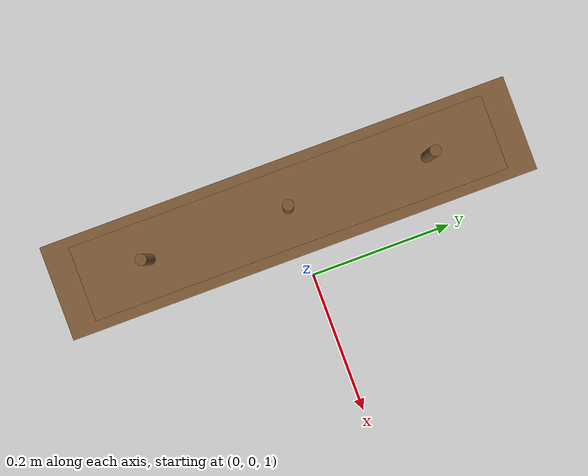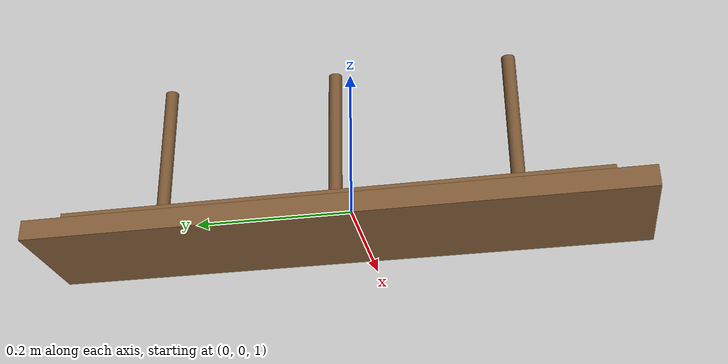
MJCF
<mujoco model="hanoi_base">
  <asset>
    <texture file="./table_arena/textures/light-wood.png"
             type="2d"
             name="hanoi_wood_tex" />

    <material name="hanoi_base_lower_mat"
              texture="hanoi_wood_tex"
              texrepeat="1 1"
              texuniform="true"
              rgba="0.72 0.72 0.72 1"
              specular="0.0"
              shininess="0.0"
              reflectance="0.0" />

    <material name="hanoi_base_upper_mat"
              texture="hanoi_wood_tex"
              texrepeat="1 1"
              texuniform="true"
              rgba="0.72 0.72 0.72 1"
              specular="0.0"
              shininess="0.0"
              reflectance="0.0" />

    <material name="hanoi_post_mat"
              texture="hanoi_wood_tex"
              texrepeat="1 3"
              texuniform="true"
              rgba="0.68 0.68 0.68 1"
              specular="0.0"
              shininess="0.0"
              reflectance="0.0" />
  </asset>

  <worldbody>
    <body name="hanoi_base" pos="-0.10 0 0.92">

      <!-- ================= Base ================= -->

      <geom name="hanoi_base_lower_visual"
            type="box"
            pos="0 0 0.012"
            size="0.07 0.35 0.012"
            material="hanoi_base_lower_mat"
            contype="0" conaffinity="0"
            density="0"
            group="1"/>

      <geom name="hanoi_base_lower_collision"
            type="box"
            pos="0 0 0.012"
            size="0.07 0.35 0.012"
            friction="1.0 0.02 0.002"
            density="900"
            group="3"/>

      <geom name="hanoi_base_upper_visual"
            type="box"
            pos="0 0 0.030"
            size="0.055 0.31 0.006"
            material="hanoi_base_upper_mat"
            contype="0" conaffinity="0"
            density="0"
            group="1"/>

      <geom name="hanoi_base_upper_collision"
            type="box"
            pos="0 0 0.030"
            size="0.055 0.31 0.006"
            friction="1.0 0.02 0.002"
            density="900"
            group="3"/>

      <!-- ================= Posts ================= -->

      <!-- Post A -->
      <geom name="hanoi_post_a_visual"
            type="cylinder"
            pos="0 0.208 0.126"
            size="0.008 0.090"
            material="hanoi_post_mat"
            contype="0" conaffinity="0"
            density="0"
            group="1"/>

      <geom name="hanoi_post_a_collision"
            type="cylinder"
            pos="0 0.208 0.126"
            size="0.008 0.090"
            friction="0.05 0.002 0.0002"
            density="1200"
            group="3"/>

      <!-- Post B -->
      <geom name="hanoi_post_b_visual"
            type="cylinder"
            pos="0 0 0.126"
            size="0.008 0.090"
            material="hanoi_post_mat"
            contype="0" conaffinity="0"
            density="0"
            group="1"/>

      <geom name="hanoi_post_b_collision"
            type="cylinder"
            pos="0 0 0.126"
            size="0.008 0.090"
            friction="0.05 0.002 0.0002"
            density="1200"
            group="3"/>

      <!-- Post C -->
      <geom name="hanoi_post_c_visual"
            type="cylinder"
            pos="0 -0.208 0.126"
            size="0.008 0.090"
            material="hanoi_post_mat"
            contype="0" conaffinity="0"
            density="0"
            group="1"/>

      <geom name="hanoi_post_c_collision"
            type="cylinder"
            pos="0 -0.208 0.126"
            size="0.008 0.090"
            friction="0.05 0.002 0.0002"
            density="1200"
            group="3"/>

      <!-- ================= Sites ================= -->

      <site name="hanoi_post_a_site"
            pos="0 0.208 0.216"
            size="0.004"
            rgba="0 0 1 0"/>

      <site name="hanoi_post_b_site"
            pos="0 0 0.216"
            size="0.004"
            rgba="0 1 0 0"/>

      <site name="hanoi_post_c_site"
            pos="0 -0.208 0.216"
            size="0.004"
            rgba="1 0 0 0"/>

    </body>
  </worldbody>
</mujoco>
